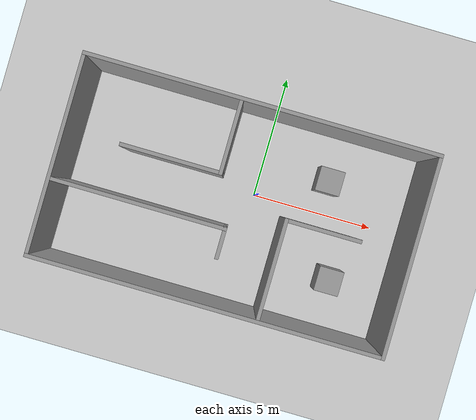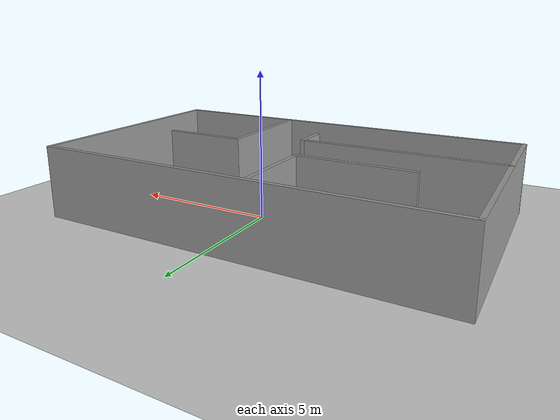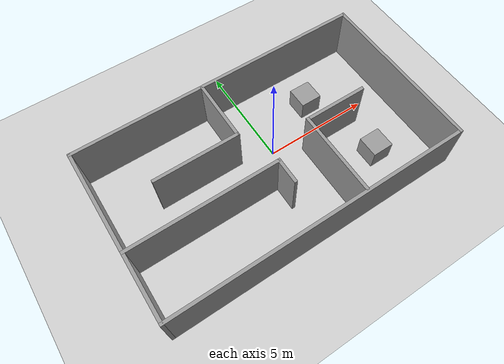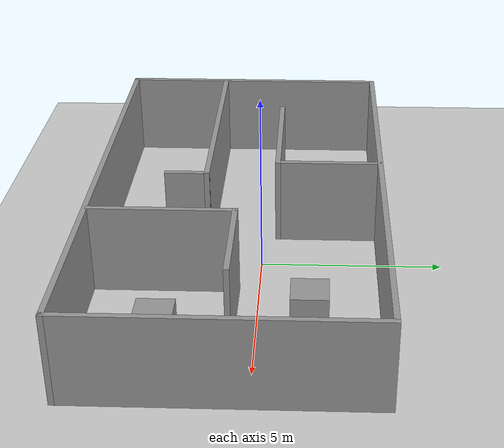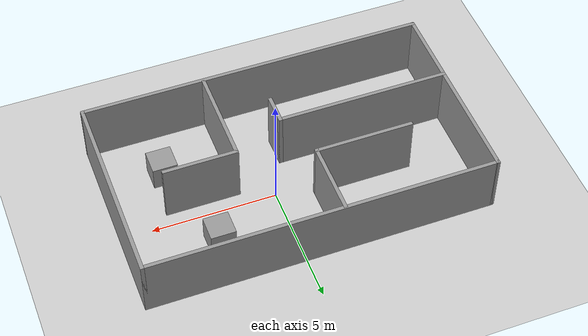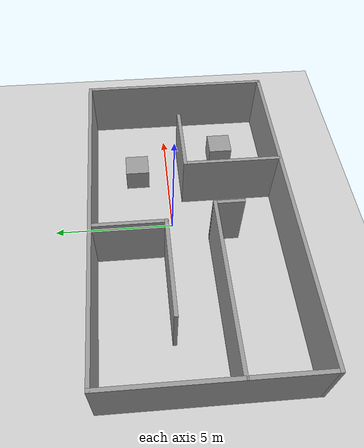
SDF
<sdf version="1.7">
 <world name="default">
  <light name="sun" type="directional">
   <pose>0 0 10 0 -0 0</pose>
   <diffuse>0.8 0.8 0.8 1</diffuse>
   <specular>0.2 0.2 0.2 1</specular>
   <attenuation>
    <range>1000</range>
    <constant>0.9</constant>
    <linear>0.01</linear>
    <quadratic>0.001</quadratic>
   </attenuation>
   <direction>-0.5 0.1 -0.9</direction>
   <spot><inner_angle>0</inner_angle><outer_angle>0</outer_angle><falloff>0</falloff></spot>
  </light>
  <model name="ground_plane">
   <static>1</static>
   <link name="link">
    <collision name="collision">
     <geometry><plane><normal>0 0 1</normal><size>100 100</size></plane></geometry>
     <surface>
      <contact><collide_bitmask>65535</collide_bitmask></contact>
      <friction><ode><mu>100</mu><mu2>50</mu2></ode></friction>
     </surface>
    </collision>
    <visual name="visual">
     <cast_shadows>0</cast_shadows>
     <geometry><plane><normal>0 0 1</normal><size>100 100</size></plane></geometry>
     <material>
      <script><uri>file://media/materials/scripts/gazebo.material</uri><name>Gazebo/Grey</name></script>
     </material>
    </visual>
   </link>
  </model>
  <gravity>0 0 -9.8</gravity>
  <magnetic_field>6e-06 2.3e-05 -4.2e-05</magnetic_field>
  <atmosphere type="adiabatic"/>
  <physics type="ode">
   <max_step_size>0.001</max_step_size>
   <real_time_factor>1</real_time_factor>
   <real_time_update_rate>1000</real_time_update_rate>
  </physics>
  <scene><ambient>0.4 0.4 0.4 1</ambient><background>0.7 0.7 0.7 1</background><shadows>1</shadows></scene>
  <audio><device>default</device></audio>
  <spherical_coordinates>
   <surface_model>EARTH_WGS84</surface_model>
   <latitude_deg>0</latitude_deg>
   <longitude_deg>0</longitude_deg>
   <elevation>0</elevation>
   <heading_deg>0</heading_deg>
  </spherical_coordinates>
  <model name="room">
   <pose>-0.693877 -0.3496 0 0 -0 0</pose>
   <link name="Wall_14">
    <collision name="Wall_14_Collision">
     <geometry><box><size>14 0.15 2.5</size></box></geometry>
     <pose>0 0 1.25 0 -0 0</pose>
    </collision>
    <visual name="Wall_14_Visual">
     <pose>0 0 1.25 0 -0 0</pose>
     <geometry><box><size>14 0.15 2.5</size></box></geometry>
     <material>
      <script><uri>file://media/materials/scripts/gazebo.material</uri><name>Gazebo/Grey</name></script>
      <ambient>1 1 1 1</ambient>
     </material>
     <meta><layer>0</layer></meta>
    </visual>
    <pose>0 3.64425 0 0 -0 0</pose>
   </link>
   <link name="Wall_17">
    <collision name="Wall_17_Collision">
     <geometry><box><size>8 0.15 2.5</size></box></geometry>
     <pose>0 0 1.25 0 -0 0</pose>
    </collision>
    <visual name="Wall_17_Visual">
     <pose>0 0 1.25 0 -0 0</pose>
     <geometry><box><size>8 0.15 2.5</size></box></geometry>
     <material>
      <script><uri>file://media/materials/scripts/gazebo.material</uri><name>Gazebo/Grey</name></script>
      <ambient>1 1 1 1</ambient>
     </material>
     <meta><layer>0</layer></meta>
    </visual>
    <pose>6.925 -0.28075 0 0 -0 -1.5708</pose>
   </link>
   <link name="Wall_18">
    <collision name="Wall_18_Collision">
     <geometry><box><size>14 0.15 2.5</size></box></geometry>
     <pose>0 0 1.25 0 -0 0</pose>
    </collision>
    <visual name="Wall_18_Visual">
     <pose>0 0 1.25 0 -0 0</pose>
     <geometry><box><size>14 0.15 2.5</size></box></geometry>
     <material>
      <script><uri>file://media/materials/scripts/gazebo.material</uri><name>Gazebo/Grey</name></script>
      <ambient>1 1 1 1</ambient>
     </material>
     <meta><layer>0</layer></meta>
    </visual>
    <pose>0 -4.20575 0 0 -0 3.14159</pose>
   </link>
   <link name="Wall_19">
    <collision name="Wall_19_Collision">
     <geometry><box><size>8 0.15 2.5</size></box></geometry>
     <pose>0 0 1.25 0 -0 0</pose>
    </collision>
    <visual name="Wall_19_Visual">
     <pose>0 0 1.25 0 -0 0</pose>
     <geometry><box><size>8 0.15 2.5</size></box></geometry>
     <material>
      <script><uri>file://media/materials/scripts/gazebo.material</uri><name>Gazebo/Grey</name></script>
      <ambient>1 1 1 1</ambient>
     </material>
     <meta><layer>0</layer></meta>
    </visual>
    <pose>-6.925 -0.28075 0 0 -0 1.5708</pose>
   </link>
   <link name="Wall_21">
    <collision name="Wall_21_Collision">
     <geometry><box><size>3 0.15 2.5</size></box></geometry>
     <pose>0 0 1.25 0 -0 0</pose>
    </collision>
    <visual name="Wall_21_Visual">
     <pose>0 0 1.25 0 -0 0</pose>
     <geometry><box><size>3 0.15 2.5</size></box></geometry>
     <material>
      <script><uri>file://media/materials/scripts/gazebo.material</uri><name>Gazebo/Grey</name></script>
      <ambient>1 1 1 1</ambient>
     </material>
     <meta><layer>0</layer></meta>
    </visual>
    <pose>-0.803968 2.17161 0 0 -0 -1.5708</pose>
   </link>
   <link name="Wall_22">
    <collision name="Wall_22_Collision">
     <geometry><box><size>4 0.15 2.5</size></box></geometry>
     <pose>0 0 1.25 0 -0 0</pose>
    </collision>
    <visual name="Wall_22_Visual">
     <pose>0 0 1.25 0 -0 0</pose>
     <geometry><box><size>4 0.15 2.5</size></box></geometry>
     <material>
      <script><uri>file://media/materials/scripts/gazebo.material</uri><name>Gazebo/Grey</name></script>
      <ambient>1 1 1 1</ambient>
     </material>
     <meta><layer>0</layer></meta>
    </visual>
    <pose>-2.72897 0.746612 0 0 -0 3.14159</pose>
   </link>
   <link name="Wall_24">
    <collision name="Wall_24_Collision">
     <geometry><box><size>7 0.15 2.5</size></box></geometry>
     <pose>0 0 1.25 0 -0 0</pose>
    </collision>
    <visual name="Wall_24_Visual">
     <pose>0 0 1.25 0 -0 0</pose>
     <geometry><box><size>7 0.15 2.5</size></box></geometry>
     <material>
      <script><uri>file://media/materials/scripts/gazebo.material</uri><name>Gazebo/Grey</name></script>
      <ambient>1 1 1 1</ambient>
     </material>
     <meta><layer>0</layer></meta>
    </visual>
    <pose>-3.49701 -1.20605 0 0 -0 0</pose>
   </link>
   <link name="Wall_25">
    <collision name="Wall_25_Collision">
     <geometry><box><size>1.25 0.15 2.5</size></box></geometry>
     <pose>0 0 1.25 0 -0 0</pose>
    </collision>
    <visual name="Wall_25_Visual">
     <pose>0 0 1.25 0 -0 0</pose>
     <geometry><box><size>1.25 0.15 2.5</size></box></geometry>
     <material>
      <script><uri>file://media/materials/scripts/gazebo.material</uri><name>Gazebo/Grey</name></script>
      <ambient>1 1 1 1</ambient>
     </material>
     <meta><layer>0</layer></meta>
    </visual>
    <pose>-0.072014 -1.75605 0 0 -0 -1.5708</pose>
   </link>
   <link name="Wall_27">
    <collision name="Wall_27_Collision">
     <geometry><box><size>4 0.15 2.5</size></box></geometry>
     <pose>0 0 1.25 0 -0 0</pose>
    </collision>
    <visual name="Wall_27_Visual">
     <pose>0 0 1.25 0 -0 0</pose>
     <geometry><box><size>4 0.15 2.5</size></box></geometry>
     <material>
      <script><uri>file://media/materials/scripts/gazebo.material</uri><name>Gazebo/Grey</name></script>
      <ambient>1 1 1 1</ambient>
     </material>
     <meta><layer>0</layer></meta>
    </visual>
    <pose>2.04092 -2.18713 0 0 -0 1.5708</pose>
   </link>
   <link name="Wall_28">
    <collision name="Wall_28_Collision">
     <geometry><box><size>3 0.15 2.5</size></box></geometry>
     <pose>0 0 1.25 0 -0 0</pose>
    </collision>
    <visual name="Wall_28_Visual">
     <pose>0 0 1.25 0 -0 0</pose>
     <geometry><box><size>3 0.15 2.5</size></box></geometry>
     <material>
      <script><uri>file://media/materials/scripts/gazebo.material</uri><name>Gazebo/Grey</name></script>
      <ambient>1 1 1 1</ambient>
     </material>
     <meta><layer>0</layer></meta>
    </visual>
    <pose>3.46592 -0.262125 0 0 -0 0</pose>
   </link>
   <static>1</static>
  </model>
  <model name="unit_box">
   <pose>3.80604 -2.49333 0.499995 0 1e-05 -5e-06</pose>
   <link name="link">
    <inertial>
     <mass>1</mass>
     <inertia>
      <ixx>0.166667</ixx>
      <ixy>0</ixy>
      <ixz>0</ixz>
      <iyy>0.166667</iyy>
      <iyz>0</iyz>
      <izz>0.166667</izz>
     </inertia>
    </inertial>
    <collision name="collision"><geometry><box><size>1 1 1</size></box></geometry></collision>
    <visual name="visual">
     <geometry><box><size>1 1 1</size></box></geometry>
     <material>
      <script><name>Gazebo/Grey</name><uri>file://media/materials/scripts/gazebo.material</uri></script>
     </material>
    </visual>
   </link>
  </model>
  <model name="unit_box_0">
   <pose>2.74695 1.36483 0.499995 0 -1e-05 0</pose>
   <link name="link">
    <inertial>
     <mass>1</mass>
     <inertia>
      <ixx>0.166667</ixx>
      <ixy>0</ixy>
      <ixz>0</ixz>
      <iyy>0.166667</iyy>
      <iyz>0</iyz>
      <izz>0.166667</izz>
     </inertia>
    </inertial>
    <collision name="collision"><geometry><box><size>1 1 1</size></box></geometry></collision>
    <visual name="visual">
     <geometry><box><size>1 1 1</size></box></geometry>
     <material>
      <script><name>Gazebo/Grey</name><uri>file://media/materials/scripts/gazebo.material</uri></script>
     </material>
    </visual>
   </link>
  </model>
 </world>
</sdf>
